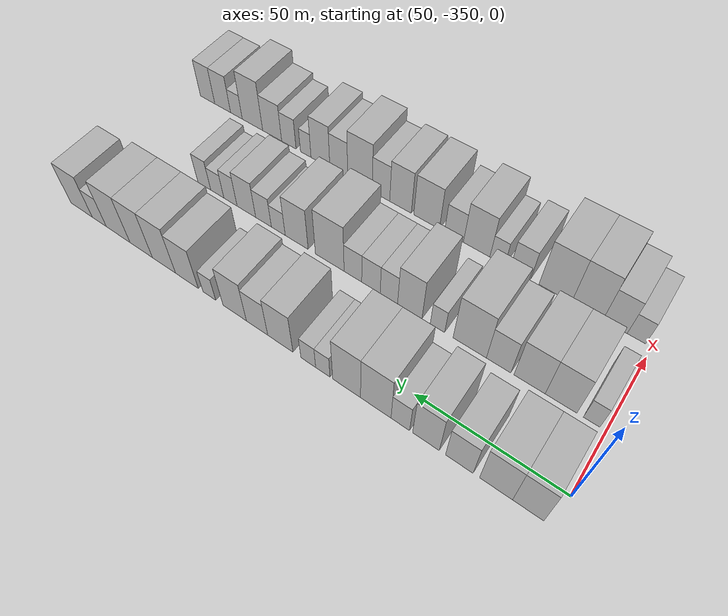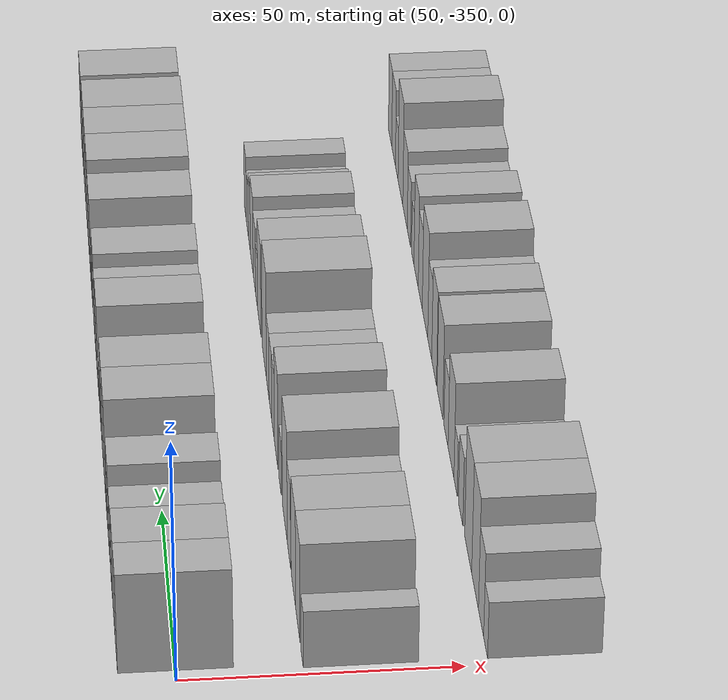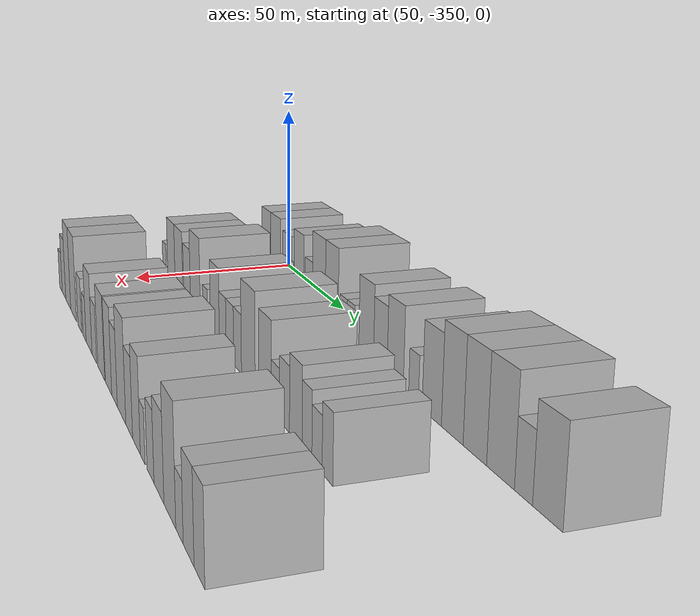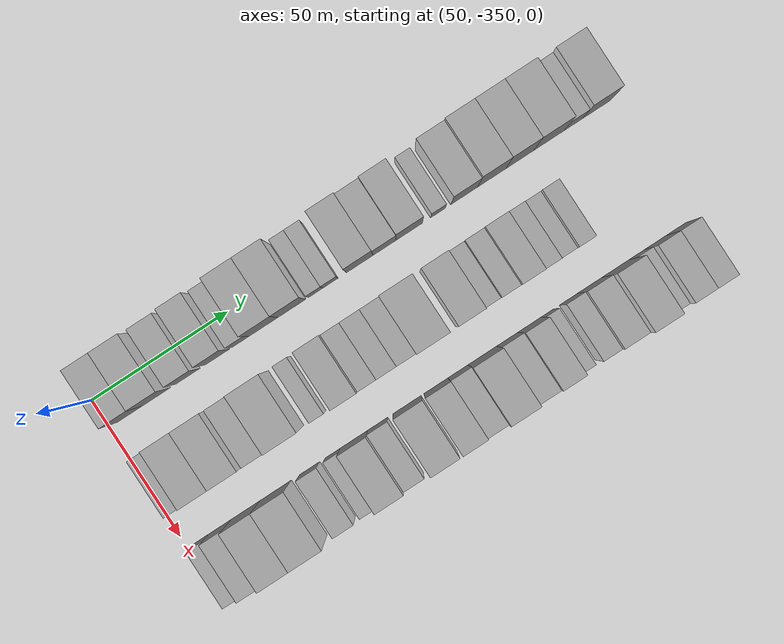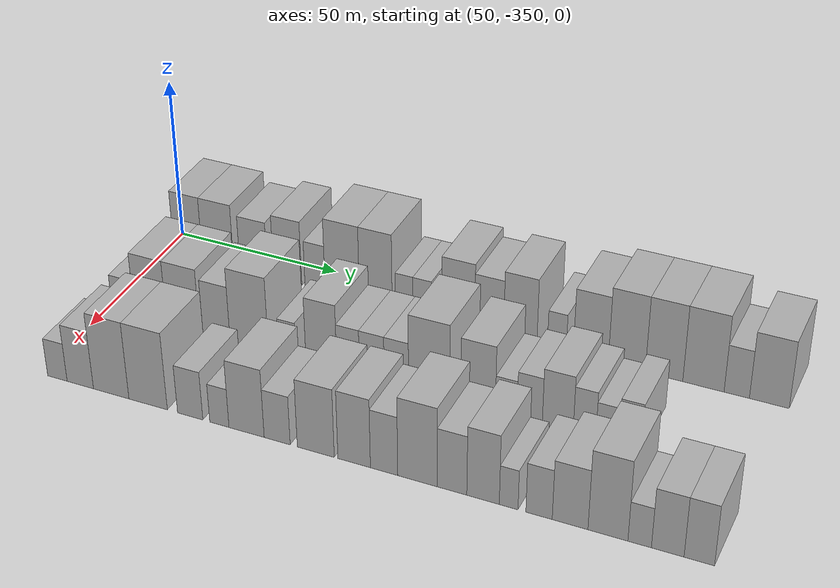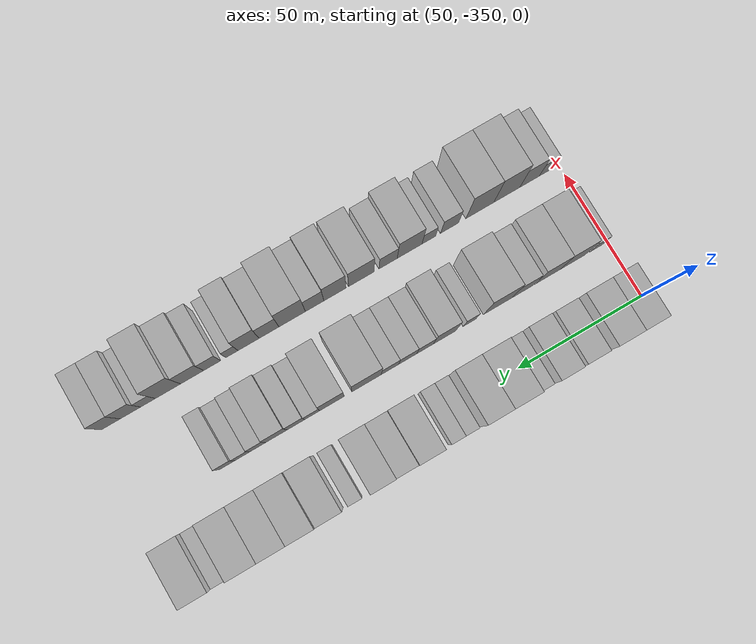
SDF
<sdf version="1.6">
 <world name="default">
  <model name="building_1">
   <static>1</static>
   <pose>50.0000 -342.3423 0 0.000000 0.000000 0.000000</pose>
   <link name="link">
    <pose>0 0 10.50 0 0 0</pose>
    <collision name="collision"><geometry><box><size>20.0000 9.3154 21.0000</size></box></geometry></collision>
    <visual name="visual">
     <cast_shadows>0</cast_shadows>
     <geometry><box><size>20.0000 9.3154 21.0000</size></box></geometry>
     <material>
      <script>
       <uri>model://HANNAS_wall/materials/scripts</uri>
       <uri>model://HANNAS_wall/materials/textures</uri>
       <name>vrc/HANNAS_wall</name>
      </script>
     </material>
    </visual>
   </link>
  </model>
  <model name="building_2">
   <static>1</static>
   <pose>50.0000 -332.5979 0 0.000000 0.000000 0.000000</pose>
   <link name="link">
    <pose>0 0 10.50 0 0 0</pose>
    <collision name="collision"><geometry><box><size>20.0000 10.1734 21.0000</size></box></geometry></collision>
    <visual name="visual">
     <cast_shadows>0</cast_shadows>
     <geometry><box><size>20.0000 10.1734 21.0000</size></box></geometry>
     <material>
      <script>
       <uri>model://HANNAS_wall/materials/scripts</uri>
       <uri>model://HANNAS_wall/materials/textures</uri>
       <name>vrc/HANNAS_wall</name>
      </script>
     </material>
    </visual>
   </link>
  </model>
  <model name="building_3">
   <static>1</static>
   <pose>50.0000 -321.1037 0 0.000000 0.000000 0.000000</pose>
   <link name="link">
    <pose>0 0 9.00 0 0 0</pose>
    <collision name="collision"><geometry><box><size>20.0000 8.8150 18.0000</size></box></geometry></collision>
    <visual name="visual">
     <cast_shadows>0</cast_shadows>
     <geometry><box><size>20.0000 8.8150 18.0000</size></box></geometry>
     <material>
      <script>
       <uri>model://HANNAS_wall/materials/scripts</uri>
       <uri>model://HANNAS_wall/materials/textures</uri>
       <name>vrc/HANNAS_wall</name>
      </script>
     </material>
    </visual>
   </link>
  </model>
  <model name="building_4">
   <static>1</static>
   <pose>50.0000 -310.2756 0 0.000000 0.000000 0.000000</pose>
   <link name="link">
    <pose>0 0 10.50 0 0 0</pose>
    <collision name="collision"><geometry><box><size>20.0000 8.8411 21.0000</size></box></geometry></collision>
    <visual name="visual">
     <cast_shadows>0</cast_shadows>
     <geometry><box><size>20.0000 8.8411 21.0000</size></box></geometry>
     <material>
      <script>
       <uri>model://HANNAS_wall/materials/scripts</uri>
       <uri>model://HANNAS_wall/materials/textures</uri>
       <name>vrc/HANNAS_wall</name>
      </script>
     </material>
    </visual>
   </link>
  </model>
  <model name="building_5">
   <static>1</static>
   <pose>50.0000 -301.7045 0 0.000000 0.000000 0.000000</pose>
   <link name="link">
    <pose>0 0 7.50 0 0 0</pose>
    <collision name="collision"><geometry><box><size>20.0000 6.3011 15.0000</size></box></geometry></collision>
    <visual name="visual">
     <cast_shadows>0</cast_shadows>
     <geometry><box><size>20.0000 6.3011 15.0000</size></box></geometry>
     <material>
      <script>
       <uri>model://HANNAS_wall/materials/scripts</uri>
       <uri>model://HANNAS_wall/materials/textures</uri>
       <name>vrc/HANNAS_wall</name>
      </script>
     </material>
    </visual>
   </link>
  </model>
  <model name="building_6">
   <static>1</static>
   <pose>50.0000 -293.2562 0 0.000000 0.000000 0.000000</pose>
   <link name="link">
    <pose>0 0 12.00 0 0 0</pose>
    <collision name="collision"><geometry><box><size>20.0000 10.5956 24.0000</size></box></geometry></collision>
    <visual name="visual">
     <cast_shadows>0</cast_shadows>
     <geometry><box><size>20.0000 10.5956 24.0000</size></box></geometry>
     <material>
      <script>
       <uri>model://HANNAS_wall/materials/scripts</uri>
       <uri>model://HANNAS_wall/materials/textures</uri>
       <name>vrc/HANNAS_wall</name>
      </script>
     </material>
    </visual>
   </link>
  </model>
  <model name="building_7">
   <static>1</static>
   <pose>50.0000 -282.9576 0 0.000000 0.000000 0.000000</pose>
   <link name="link">
    <pose>0 0 12.00 0 0 0</pose>
    <collision name="collision"><geometry><box><size>20.0000 10.0018 24.0000</size></box></geometry></collision>
    <visual name="visual">
     <cast_shadows>0</cast_shadows>
     <geometry><box><size>20.0000 10.0018 24.0000</size></box></geometry>
     <material>
      <script>
       <uri>model://HANNAS_wall/materials/scripts</uri>
       <uri>model://HANNAS_wall/materials/textures</uri>
       <name>vrc/HANNAS_wall</name>
      </script>
     </material>
    </visual>
   </link>
  </model>
  <model name="building_8">
   <static>1</static>
   <pose>50.0000 -274.3203 0 0.000000 0.000000 0.000000</pose>
   <link name="link">
    <pose>0 0 6.00 0 0 0</pose>
    <collision name="collision"><geometry><box><size>20.0000 5.2728 12.0000</size></box></geometry></collision>
    <visual name="visual">
     <cast_shadows>0</cast_shadows>
     <geometry><box><size>20.0000 5.2728 12.0000</size></box></geometry>
     <material>
      <script>
       <uri>model://HANNAS_wall/materials/scripts</uri>
       <uri>model://HANNAS_wall/materials/textures</uri>
       <name>vrc/HANNAS_wall</name>
      </script>
     </material>
    </visual>
   </link>
  </model>
  <model name="building_9">
   <static>1</static>
   <pose>50.0000 -268.9081 0 0.000000 0.000000 0.000000</pose>
   <link name="link">
    <pose>0 0 6.00 0 0 0</pose>
    <collision name="collision"><geometry><box><size>20.0000 5.5516 12.0000</size></box></geometry></collision>
    <visual name="visual">
     <cast_shadows>0</cast_shadows>
     <geometry><box><size>20.0000 5.5516 12.0000</size></box></geometry>
     <material>
      <script>
       <uri>model://HANNAS_wall/materials/scripts</uri>
       <uri>model://HANNAS_wall/materials/textures</uri>
       <name>vrc/HANNAS_wall</name>
      </script>
     </material>
    </visual>
   </link>
  </model>
  <model name="building_10">
   <static>1</static>
   <pose>50.0000 -258.2499 0 0.000000 0.000000 0.000000</pose>
   <link name="link">
    <pose>0 0 10.50 0 0 0</pose>
    <collision name="collision"><geometry><box><size>20.0000 9.7648 21.0000</size></box></geometry></collision>
    <visual name="visual">
     <cast_shadows>0</cast_shadows>
     <geometry><box><size>20.0000 9.7648 21.0000</size></box></geometry>
     <material>
      <script>
       <uri>model://HANNAS_wall/materials/scripts</uri>
       <uri>model://HANNAS_wall/materials/textures</uri>
       <name>vrc/HANNAS_wall</name>
      </script>
     </material>
    </visual>
   </link>
  </model>
  <model name="building_11">
   <static>1</static>
   <pose>50.0000 -249.1407 0 0.000000 0.000000 0.000000</pose>
   <link name="link">
    <pose>0 0 9.00 0 0 0</pose>
    <collision name="collision"><geometry><box><size>20.0000 8.4536 18.0000</size></box></geometry></collision>
    <visual name="visual">
     <cast_shadows>0</cast_shadows>
     <geometry><box><size>20.0000 8.4536 18.0000</size></box></geometry>
     <material>
      <script>
       <uri>model://HANNAS_wall/materials/scripts</uri>
       <uri>model://HANNAS_wall/materials/textures</uri>
       <name>vrc/HANNAS_wall</name>
      </script>
     </material>
    </visual>
   </link>
  </model>
  <model name="building_12">
   <static>1</static>
   <pose>50.0000 -240.1204 0 0.000000 0.000000 0.000000</pose>
   <link name="link">
    <pose>0 0 10.50 0 0 0</pose>
    <collision name="collision"><geometry><box><size>20.0000 9.5869 21.0000</size></box></geometry></collision>
    <visual name="visual">
     <cast_shadows>0</cast_shadows>
     <geometry><box><size>20.0000 9.5869 21.0000</size></box></geometry>
     <material>
      <script>
       <uri>model://HANNAS_wall/materials/scripts</uri>
       <uri>model://HANNAS_wall/materials/textures</uri>
       <name>vrc/HANNAS_wall</name>
      </script>
     </material>
    </visual>
   </link>
  </model>
  <model name="building_13">
   <static>1</static>
   <pose>50.0000 -229.6478 0 0.000000 0.000000 0.000000</pose>
   <link name="link">
    <pose>0 0 6.00 0 0 0</pose>
    <collision name="collision"><geometry><box><size>20.0000 5.3583 12.0000</size></box></geometry></collision>
    <visual name="visual">
     <cast_shadows>0</cast_shadows>
     <geometry><box><size>20.0000 5.3583 12.0000</size></box></geometry>
     <material>
      <script>
       <uri>model://HANNAS_wall/materials/scripts</uri>
       <uri>model://HANNAS_wall/materials/textures</uri>
       <name>vrc/HANNAS_wall</name>
      </script>
     </material>
    </visual>
   </link>
  </model>
  <model name="building_14">
   <static>1</static>
   <pose>50.0000 -220.0654 0 0.000000 0.000000 0.000000</pose>
   <link name="link">
    <pose>0 0 10.50 0 0 0</pose>
    <collision name="collision"><geometry><box><size>20.0000 9.8064 21.0000</size></box></geometry></collision>
    <visual name="visual">
     <cast_shadows>0</cast_shadows>
     <geometry><box><size>20.0000 9.8064 21.0000</size></box></geometry>
     <material>
      <script>
       <uri>model://HANNAS_wall/materials/scripts</uri>
       <uri>model://HANNAS_wall/materials/textures</uri>
       <name>vrc/HANNAS_wall</name>
      </script>
     </material>
    </visual>
   </link>
  </model>
  <model name="building_15">
   <static>1</static>
   <pose>50.0000 -210.0278 0 0.000000 0.000000 0.000000</pose>
   <link name="link">
    <pose>0 0 12.00 0 0 0</pose>
    <collision name="collision"><geometry><box><size>20.0000 10.2688 24.0000</size></box></geometry></collision>
    <visual name="visual">
     <cast_shadows>0</cast_shadows>
     <geometry><box><size>20.0000 10.2688 24.0000</size></box></geometry>
     <material>
      <script>
       <uri>model://HANNAS_wall/materials/scripts</uri>
       <uri>model://HANNAS_wall/materials/textures</uri>
       <name>vrc/HANNAS_wall</name>
      </script>
     </material>
    </visual>
   </link>
  </model>
  <model name="building_16">
   <static>1</static>
   <pose>50.0000 -199.7752 0 0.000000 0.000000 0.000000</pose>
   <link name="link">
    <pose>0 0 12.00 0 0 0</pose>
    <collision name="collision"><geometry><box><size>20.0000 10.2365 24.0000</size></box></geometry></collision>
    <visual name="visual">
     <cast_shadows>0</cast_shadows>
     <geometry><box><size>20.0000 10.2365 24.0000</size></box></geometry>
     <material>
      <script>
       <uri>model://HANNAS_wall/materials/scripts</uri>
       <uri>model://HANNAS_wall/materials/textures</uri>
       <name>vrc/HANNAS_wall</name>
      </script>
     </material>
    </visual>
   </link>
  </model>
  <model name="building_17">
   <static>1</static>
   <pose>50.0000 -189.1003 0 0.000000 0.000000 0.000000</pose>
   <link name="link">
    <pose>0 0 12.00 0 0 0</pose>
    <collision name="collision"><geometry><box><size>20.0000 11.1133 24.0000</size></box></geometry></collision>
    <visual name="visual">
     <cast_shadows>0</cast_shadows>
     <geometry><box><size>20.0000 11.1133 24.0000</size></box></geometry>
     <material>
      <script>
       <uri>model://HANNAS_wall/materials/scripts</uri>
       <uri>model://HANNAS_wall/materials/textures</uri>
       <name>vrc/HANNAS_wall</name>
      </script>
     </material>
    </visual>
   </link>
  </model>
  <model name="building_18">
   <static>1</static>
   <pose>50.0000 -180.1797 0 0.000000 0.000000 0.000000</pose>
   <link name="link">
    <pose>0 0 7.50 0 0 0</pose>
    <collision name="collision"><geometry><box><size>20.0000 6.7280 15.0000</size></box></geometry></collision>
    <visual name="visual">
     <cast_shadows>0</cast_shadows>
     <geometry><box><size>20.0000 6.7280 15.0000</size></box></geometry>
     <material>
      <script>
       <uri>model://HANNAS_wall/materials/scripts</uri>
       <uri>model://HANNAS_wall/materials/textures</uri>
       <name>vrc/HANNAS_wall</name>
      </script>
     </material>
    </visual>
   </link>
  </model>
  <model name="building_19">
   <static>1</static>
   <pose>50.0000 -171.5778 0 0.000000 0.000000 0.000000</pose>
   <link name="link">
    <pose>0 0 10.50 0 0 0</pose>
    <collision name="collision"><geometry><box><size>20.0000 10.4758 21.0000</size></box></geometry></collision>
    <visual name="visual">
     <cast_shadows>0</cast_shadows>
     <geometry><box><size>20.0000 10.4758 21.0000</size></box></geometry>
     <material>
      <script>
       <uri>model://HANNAS_wall/materials/scripts</uri>
       <uri>model://HANNAS_wall/materials/textures</uri>
       <name>vrc/HANNAS_wall</name>
      </script>
     </material>
    </visual>
   </link>
  </model>
  <model name="building_75">
   <static>1</static>
   <pose>82.0000 -345.4332 0 0.000000 0.000000 0.000000</pose>
   <link name="link">
    <pose>0 0 6.00 0 0 0</pose>
    <collision name="collision"><geometry><box><size>20.0000 5.1335 12.0000</size></box></geometry></collision>
    <visual name="visual">
     <cast_shadows>0</cast_shadows>
     <geometry><box><size>20.0000 5.1335 12.0000</size></box></geometry>
     <material>
      <script>
       <uri>model://HANNAS_wall/materials/scripts</uri>
       <uri>model://HANNAS_wall/materials/textures</uri>
       <name>vrc/HANNAS_wall</name>
      </script>
     </material>
    </visual>
   </link>
  </model>
  <model name="building_76">
   <static>1</static>
   <pose>82.0000 -335.8076 0 0.000000 0.000000 0.000000</pose>
   <link name="link">
    <pose>0 0 10.50 0 0 0</pose>
    <collision name="collision"><geometry><box><size>20.0000 10.1177 21.0000</size></box></geometry></collision>
    <visual name="visual">
     <cast_shadows>0</cast_shadows>
     <geometry><box><size>20.0000 10.1177 21.0000</size></box></geometry>
     <material>
      <script>
       <uri>model://HANNAS_wall/materials/scripts</uri>
       <uri>model://HANNAS_wall/materials/textures</uri>
       <name>vrc/HANNAS_wall</name>
      </script>
     </material>
    </visual>
   </link>
  </model>
  <model name="building_77">
   <static>1</static>
   <pose>82.0000 -325.6256 0 0.000000 0.000000 0.000000</pose>
   <link name="link">
    <pose>0 0 10.50 0 0 0</pose>
    <collision name="collision"><geometry><box><size>20.0000 10.2464 21.0000</size></box></geometry></collision>
    <visual name="visual">
     <cast_shadows>0</cast_shadows>
     <geometry><box><size>20.0000 10.2464 21.0000</size></box></geometry>
     <material>
      <script>
       <uri>model://HANNAS_wall/materials/scripts</uri>
       <uri>model://HANNAS_wall/materials/textures</uri>
       <name>vrc/HANNAS_wall</name>
      </script>
     </material>
    </visual>
   </link>
  </model>
  <model name="building_78">
   <static>1</static>
   <pose>82.0000 -315.3557 0 0.000000 0.000000 0.000000</pose>
   <link name="link">
    <pose>0 0 9.00 0 0 0</pose>
    <collision name="collision"><geometry><box><size>20.0000 8.2935 18.0000</size></box></geometry></collision>
    <visual name="visual">
     <cast_shadows>0</cast_shadows>
     <geometry><box><size>20.0000 8.2935 18.0000</size></box></geometry>
     <material>
      <script>
       <uri>model://HANNAS_wall/materials/scripts</uri>
       <uri>model://HANNAS_wall/materials/textures</uri>
       <name>vrc/HANNAS_wall</name>
      </script>
     </material>
    </visual>
   </link>
  </model>
  <model name="building_79">
   <static>1</static>
   <pose>82.0000 -305.4028 0 0.000000 0.000000 0.000000</pose>
   <link name="link">
    <pose>0 0 12.00 0 0 0</pose>
    <collision name="collision"><geometry><box><size>20.0000 11.6123 24.0000</size></box></geometry></collision>
    <visual name="visual">
     <cast_shadows>0</cast_shadows>
     <geometry><box><size>20.0000 11.6123 24.0000</size></box></geometry>
     <material>
      <script>
       <uri>model://HANNAS_wall/materials/scripts</uri>
       <uri>model://HANNAS_wall/materials/textures</uri>
       <name>vrc/HANNAS_wall</name>
      </script>
     </material>
    </visual>
   </link>
  </model>
  <model name="building_80">
   <static>1</static>
   <pose>82.0000 -294.0077 0 0.000000 0.000000 0.000000</pose>
   <link name="link">
    <pose>0 0 6.00 0 0 0</pose>
    <collision name="collision"><geometry><box><size>20.0000 5.1777 12.0000</size></box></geometry></collision>
    <visual name="visual">
     <cast_shadows>0</cast_shadows>
     <geometry><box><size>20.0000 5.1777 12.0000</size></box></geometry>
     <material>
      <script>
       <uri>model://HANNAS_wall/materials/scripts</uri>
       <uri>model://HANNAS_wall/materials/textures</uri>
       <name>vrc/HANNAS_wall</name>
      </script>
     </material>
    </visual>
   </link>
  </model>
  <model name="building_81">
   <static>1</static>
   <pose>82.0000 -283.8855 0 0.000000 0.000000 0.000000</pose>
   <link name="link">
    <pose>0 0 10.50 0 0 0</pose>
    <collision name="collision"><geometry><box><size>20.0000 9.0667 21.0000</size></box></geometry></collision>
    <visual name="visual">
     <cast_shadows>0</cast_shadows>
     <geometry><box><size>20.0000 9.0667 21.0000</size></box></geometry>
     <material>
      <script>
       <uri>model://HANNAS_wall/materials/scripts</uri>
       <uri>model://HANNAS_wall/materials/textures</uri>
       <name>vrc/HANNAS_wall</name>
      </script>
     </material>
    </visual>
   </link>
  </model>
  <model name="building_82">
   <static>1</static>
   <pose>82.0000 -276.0602 0 0.000000 0.000000 0.000000</pose>
   <link name="link">
    <pose>0 0 7.50 0 0 0</pose>
    <collision name="collision"><geometry><box><size>20.0000 6.5839 15.0000</size></box></geometry></collision>
    <visual name="visual">
     <cast_shadows>0</cast_shadows>
     <geometry><box><size>20.0000 6.5839 15.0000</size></box></geometry>
     <material>
      <script>
       <uri>model://HANNAS_wall/materials/scripts</uri>
       <uri>model://HANNAS_wall/materials/textures</uri>
       <name>vrc/HANNAS_wall</name>
      </script>
     </material>
    </visual>
   </link>
  </model>
  <model name="building_83">
   <static>1</static>
   <pose>82.0000 -269.2051 0 0.000000 0.000000 0.000000</pose>
   <link name="link">
    <pose>0 0 7.50 0 0 0</pose>
    <collision name="collision"><geometry><box><size>20.0000 7.1263 15.0000</size></box></geometry></collision>
    <visual name="visual">
     <cast_shadows>0</cast_shadows>
     <geometry><box><size>20.0000 7.1263 15.0000</size></box></geometry>
     <material>
      <script>
       <uri>model://HANNAS_wall/materials/scripts</uri>
       <uri>model://HANNAS_wall/materials/textures</uri>
       <name>vrc/HANNAS_wall</name>
      </script>
     </material>
    </visual>
   </link>
  </model>
  <model name="building_84">
   <static>1</static>
   <pose>82.0000 -262.1784 0 0.000000 0.000000 0.000000</pose>
   <link name="link">
    <pose>0 0 7.50 0 0 0</pose>
    <collision name="collision"><geometry><box><size>20.0000 6.9270 15.0000</size></box></geometry></collision>
    <visual name="visual">
     <cast_shadows>0</cast_shadows>
     <geometry><box><size>20.0000 6.9270 15.0000</size></box></geometry>
     <material>
      <script>
       <uri>model://HANNAS_wall/materials/scripts</uri>
       <uri>model://HANNAS_wall/materials/textures</uri>
       <name>vrc/HANNAS_wall</name>
      </script>
     </material>
    </visual>
   </link>
  </model>
  <model name="building_85">
   <static>1</static>
   <pose>82.0000 -252.9175 0 0.000000 0.000000 0.000000</pose>
   <link name="link">
    <pose>0 0 12.00 0 0 0</pose>
    <collision name="collision"><geometry><box><size>20.0000 11.5948 24.0000</size></box></geometry></collision>
    <visual name="visual">
     <cast_shadows>0</cast_shadows>
     <geometry><box><size>20.0000 11.5948 24.0000</size></box></geometry>
     <material>
      <script>
       <uri>model://HANNAS_wall/materials/scripts</uri>
       <uri>model://HANNAS_wall/materials/textures</uri>
       <name>vrc/HANNAS_wall</name>
      </script>
     </material>
    </visual>
   </link>
  </model>
  <model name="building_86">
   <static>1</static>
   <pose>82.0000 -239.3243 0 0.000000 0.000000 0.000000</pose>
   <link name="link">
    <pose>0 0 10.50 0 0 0</pose>
    <collision name="collision"><geometry><box><size>20.0000 9.5917 21.0000</size></box></geometry></collision>
    <visual name="visual">
     <cast_shadows>0</cast_shadows>
     <geometry><box><size>20.0000 9.5917 21.0000</size></box></geometry>
     <material>
      <script>
       <uri>model://HANNAS_wall/materials/scripts</uri>
       <uri>model://HANNAS_wall/materials/textures</uri>
       <name>vrc/HANNAS_wall</name>
      </script>
     </material>
    </visual>
   </link>
  </model>
  <model name="building_87">
   <static>1</static>
   <pose>82.0000 -231.5655 0 0.000000 0.000000 0.000000</pose>
   <link name="link">
    <pose>0 0 6.00 0 0 0</pose>
    <collision name="collision"><geometry><box><size>20.0000 5.9258 12.0000</size></box></geometry></collision>
    <visual name="visual">
     <cast_shadows>0</cast_shadows>
     <geometry><box><size>20.0000 5.9258 12.0000</size></box></geometry>
     <material>
      <script>
       <uri>model://HANNAS_wall/materials/scripts</uri>
       <uri>model://HANNAS_wall/materials/textures</uri>
       <name>vrc/HANNAS_wall</name>
      </script>
     </material>
    </visual>
   </link>
  </model>
  <model name="building_88">
   <static>1</static>
   <pose>82.0000 -225.1864 0 0.000000 0.000000 0.000000</pose>
   <link name="link">
    <pose>0 0 7.50 0 0 0</pose>
    <collision name="collision"><geometry><box><size>20.0000 6.8324 15.0000</size></box></geometry></collision>
    <visual name="visual">
     <cast_shadows>0</cast_shadows>
     <geometry><box><size>20.0000 6.8324 15.0000</size></box></geometry>
     <material>
      <script>
       <uri>model://HANNAS_wall/materials/scripts</uri>
       <uri>model://HANNAS_wall/materials/textures</uri>
       <name>vrc/HANNAS_wall</name>
      </script>
     </material>
    </visual>
   </link>
  </model>
  <model name="building_89">
   <static>1</static>
   <pose>82.0000 -217.6372 0 0.000000 0.000000 0.000000</pose>
   <link name="link">
    <pose>0 0 9.00 0 0 0</pose>
    <collision name="collision"><geometry><box><size>20.0000 8.2659 18.0000</size></box></geometry></collision>
    <visual name="visual">
     <cast_shadows>0</cast_shadows>
     <geometry><box><size>20.0000 8.2659 18.0000</size></box></geometry>
     <material>
      <script>
       <uri>model://HANNAS_wall/materials/scripts</uri>
       <uri>model://HANNAS_wall/materials/textures</uri>
       <name>vrc/HANNAS_wall</name>
      </script>
     </material>
    </visual>
   </link>
  </model>
  <model name="building_90">
   <static>1</static>
   <pose>82.0000 -210.5041 0 0.000000 0.000000 0.000000</pose>
   <link name="link">
    <pose>0 0 7.50 0 0 0</pose>
    <collision name="collision"><geometry><box><size>20.0000 6.0003 15.0000</size></box></geometry></collision>
    <visual name="visual">
     <cast_shadows>0</cast_shadows>
     <geometry><box><size>20.0000 6.0003 15.0000</size></box></geometry>
     <material>
      <script>
       <uri>model://HANNAS_wall/materials/scripts</uri>
       <uri>model://HANNAS_wall/materials/textures</uri>
       <name>vrc/HANNAS_wall</name>
      </script>
     </material>
    </visual>
   </link>
  </model>
  <model name="building_91">
   <static>1</static>
   <pose>82.0000 -204.5044 0 0.000000 0.000000 0.000000</pose>
   <link name="link">
    <pose>0 0 6.00 0 0 0</pose>
    <collision name="collision"><geometry><box><size>20.0000 5.9992 12.0000</size></box></geometry></collision>
    <visual name="visual">
     <cast_shadows>0</cast_shadows>
     <geometry><box><size>20.0000 5.9992 12.0000</size></box></geometry>
     <material>
      <script>
       <uri>model://HANNAS_wall/materials/scripts</uri>
       <uri>model://HANNAS_wall/materials/textures</uri>
       <name>vrc/HANNAS_wall</name>
      </script>
     </material>
    </visual>
   </link>
  </model>
  <model name="building_92">
   <static>1</static>
   <pose>82.0000 -198.5047 0 0.000000 0.000000 0.000000</pose>
   <link name="link">
    <pose>0 0 7.50 0 0 0</pose>
    <collision name="collision"><geometry><box><size>20.0000 6.0001 15.0000</size></box></geometry></collision>
    <visual name="visual">
     <cast_shadows>0</cast_shadows>
     <geometry><box><size>20.0000 6.0001 15.0000</size></box></geometry>
     <material>
      <script>
       <uri>model://HANNAS_wall/materials/scripts</uri>
       <uri>model://HANNAS_wall/materials/textures</uri>
       <name>vrc/HANNAS_wall</name>
      </script>
     </material>
    </visual>
   </link>
  </model>
  <model name="building_150">
   <static>1</static>
   <pose>114.0000 -345.0100 0 0.000000 0.000000 0.000000</pose>
   <link name="link">
    <pose>0 0 6.00 0 0 0</pose>
    <collision name="collision"><geometry><box><size>20.0000 5.9799 12.0000</size></box></geometry></collision>
    <visual name="visual">
     <cast_shadows>0</cast_shadows>
     <geometry><box><size>20.0000 5.9799 12.0000</size></box></geometry>
     <material>
      <script>
       <uri>model://HANNAS_wall/materials/scripts</uri>
       <uri>model://HANNAS_wall/materials/textures</uri>
       <name>vrc/HANNAS_wall</name>
      </script>
     </material>
    </visual>
   </link>
  </model>
  <model name="building_151">
   <static>1</static>
   <pose>114.0000 -338.0044 0 0.000000 0.000000 0.000000</pose>
   <link name="link">
    <pose>0 0 9.00 0 0 0</pose>
    <collision name="collision"><geometry><box><size>20.0000 8.0313 18.0000</size></box></geometry></collision>
    <visual name="visual">
     <cast_shadows>0</cast_shadows>
     <geometry><box><size>20.0000 8.0313 18.0000</size></box></geometry>
     <material>
      <script>
       <uri>model://HANNAS_wall/materials/scripts</uri>
       <uri>model://HANNAS_wall/materials/textures</uri>
       <name>vrc/HANNAS_wall</name>
      </script>
     </material>
    </visual>
   </link>
  </model>
  <model name="building_152">
   <static>1</static>
   <pose>114.0000 -328.6594 0 0.000000 0.000000 0.000000</pose>
   <link name="link">
    <pose>0 0 12.00 0 0 0</pose>
    <collision name="collision"><geometry><box><size>20.0000 10.6588 24.0000</size></box></geometry></collision>
    <visual name="visual">
     <cast_shadows>0</cast_shadows>
     <geometry><box><size>20.0000 10.6588 24.0000</size></box></geometry>
     <material>
      <script>
       <uri>model://HANNAS_wall/materials/scripts</uri>
       <uri>model://HANNAS_wall/materials/textures</uri>
       <name>vrc/HANNAS_wall</name>
      </script>
     </material>
    </visual>
   </link>
  </model>
  <model name="building_153">
   <static>1</static>
   <pose>114.0000 -317.6374 0 0.000000 0.000000 0.000000</pose>
   <link name="link">
    <pose>0 0 12.00 0 0 0</pose>
    <collision name="collision"><geometry><box><size>20.0000 11.3854 24.0000</size></box></geometry></collision>
    <visual name="visual">
     <cast_shadows>0</cast_shadows>
     <geometry><box><size>20.0000 11.3854 24.0000</size></box></geometry>
     <material>
      <script>
       <uri>model://HANNAS_wall/materials/scripts</uri>
       <uri>model://HANNAS_wall/materials/textures</uri>
       <name>vrc/HANNAS_wall</name>
      </script>
     </material>
    </visual>
   </link>
  </model>
  <model name="building_154">
   <static>1</static>
   <pose>114.0000 -305.2640 0 0.000000 0.000000 0.000000</pose>
   <link name="link">
    <pose>0 0 7.50 0 0 0</pose>
    <collision name="collision"><geometry><box><size>20.0000 7.3614 15.0000</size></box></geometry></collision>
    <visual name="visual">
     <cast_shadows>0</cast_shadows>
     <geometry><box><size>20.0000 7.3614 15.0000</size></box></geometry>
     <material>
      <script>
       <uri>model://HANNAS_wall/materials/scripts</uri>
       <uri>model://HANNAS_wall/materials/textures</uri>
       <name>vrc/HANNAS_wall</name>
      </script>
     </material>
    </visual>
   </link>
  </model>
  <model name="building_155">
   <static>1</static>
   <pose>114.0000 -296.8234 0 0.000000 0.000000 0.000000</pose>
   <link name="link">
    <pose>0 0 6.00 0 0 0</pose>
    <collision name="collision"><geometry><box><size>20.0000 5.5198 12.0000</size></box></geometry></collision>
    <visual name="visual">
     <cast_shadows>0</cast_shadows>
     <geometry><box><size>20.0000 5.5198 12.0000</size></box></geometry>
     <material>
      <script>
       <uri>model://HANNAS_wall/materials/scripts</uri>
       <uri>model://HANNAS_wall/materials/textures</uri>
       <name>vrc/HANNAS_wall</name>
      </script>
     </material>
    </visual>
   </link>
  </model>
  <model name="building_156">
   <static>1</static>
   <pose>114.0000 -289.0559 0 0.000000 0.000000 0.000000</pose>
   <link name="link">
    <pose>0 0 10.50 0 0 0</pose>
    <collision name="collision"><geometry><box><size>20.0000 10.0151 21.0000</size></box></geometry></collision>
    <visual name="visual">
     <cast_shadows>0</cast_shadows>
     <geometry><box><size>20.0000 10.0151 21.0000</size></box></geometry>
     <material>
      <script>
       <uri>model://HANNAS_wall/materials/scripts</uri>
       <uri>model://HANNAS_wall/materials/textures</uri>
       <name>vrc/HANNAS_wall</name>
      </script>
     </material>
    </visual>
   </link>
  </model>
  <model name="building_157">
   <static>1</static>
   <pose>114.0000 -280.3958 0 0.000000 0.000000 0.000000</pose>
   <link name="link">
    <pose>0 0 7.50 0 0 0</pose>
    <collision name="collision"><geometry><box><size>20.0000 7.3053 15.0000</size></box></geometry></collision>
    <visual name="visual">
     <cast_shadows>0</cast_shadows>
     <geometry><box><size>20.0000 7.3053 15.0000</size></box></geometry>
     <material>
      <script>
       <uri>model://HANNAS_wall/materials/scripts</uri>
       <uri>model://HANNAS_wall/materials/textures</uri>
       <name>vrc/HANNAS_wall</name>
      </script>
     </material>
    </visual>
   </link>
  </model>
  <model name="building_158">
   <static>1</static>
   <pose>114.0000 -269.6367 0 0.000000 0.000000 0.000000</pose>
   <link name="link">
    <pose>0 0 10.50 0 0 0</pose>
    <collision name="collision"><geometry><box><size>20.0000 10.2128 21.0000</size></box></geometry></collision>
    <visual name="visual">
     <cast_shadows>0</cast_shadows>
     <geometry><box><size>20.0000 10.2128 21.0000</size></box></geometry>
     <material>
      <script>
       <uri>model://HANNAS_wall/materials/scripts</uri>
       <uri>model://HANNAS_wall/materials/textures</uri>
       <name>vrc/HANNAS_wall</name>
      </script>
     </material>
    </visual>
   </link>
  </model>
  <model name="building_159">
   <static>1</static>
   <pose>114.0000 -259.1006 0 0.000000 0.000000 0.000000</pose>
   <link name="link">
    <pose>0 0 10.50 0 0 0</pose>
    <collision name="collision"><geometry><box><size>20.0000 8.8594 21.0000</size></box></geometry></collision>
    <visual name="visual">
     <cast_shadows>0</cast_shadows>
     <geometry><box><size>20.0000 8.8594 21.0000</size></box></geometry>
     <material>
      <script>
       <uri>model://HANNAS_wall/materials/scripts</uri>
       <uri>model://HANNAS_wall/materials/textures</uri>
       <name>vrc/HANNAS_wall</name>
      </script>
     </material>
    </visual>
   </link>
  </model>
  <model name="building_160">
   <static>1</static>
   <pose>114.0000 -250.9980 0 0.000000 0.000000 0.000000</pose>
   <link name="link">
    <pose>0 0 9.00 0 0 0</pose>
    <collision name="collision"><geometry><box><size>20.0000 7.3457 18.0000</size></box></geometry></collision>
    <visual name="visual">
     <cast_shadows>0</cast_shadows>
     <geometry><box><size>20.0000 7.3457 18.0000</size></box></geometry>
     <material>
      <script>
       <uri>model://HANNAS_wall/materials/scripts</uri>
       <uri>model://HANNAS_wall/materials/textures</uri>
       <name>vrc/HANNAS_wall</name>
      </script>
     </material>
    </visual>
   </link>
  </model>
  <model name="building_161">
   <static>1</static>
   <pose>114.0000 -242.0949 0 0.000000 0.000000 0.000000</pose>
   <link name="link">
    <pose>0 0 12.00 0 0 0</pose>
    <collision name="collision"><geometry><box><size>20.0000 10.4605 24.0000</size></box></geometry></collision>
    <visual name="visual">
     <cast_shadows>0</cast_shadows>
     <geometry><box><size>20.0000 10.4605 24.0000</size></box></geometry>
     <material>
      <script>
       <uri>model://HANNAS_wall/materials/scripts</uri>
       <uri>model://HANNAS_wall/materials/textures</uri>
       <name>vrc/HANNAS_wall</name>
      </script>
     </material>
    </visual>
   </link>
  </model>
  <model name="building_162">
   <static>1</static>
   <pose>114.0000 -232.9750 0 0.000000 0.000000 0.000000</pose>
   <link name="link">
    <pose>0 0 9.00 0 0 0</pose>
    <collision name="collision"><geometry><box><size>20.0000 7.7792 18.0000</size></box></geometry></collision>
    <visual name="visual">
     <cast_shadows>0</cast_shadows>
     <geometry><box><size>20.0000 7.7792 18.0000</size></box></geometry>
     <material>
      <script>
       <uri>model://HANNAS_wall/materials/scripts</uri>
       <uri>model://HANNAS_wall/materials/textures</uri>
       <name>vrc/HANNAS_wall</name>
      </script>
     </material>
    </visual>
   </link>
  </model>
  <model name="building_163">
   <static>1</static>
   <pose>114.0000 -224.8785 0 0.000000 0.000000 0.000000</pose>
   <link name="link">
    <pose>0 0 10.50 0 0 0</pose>
    <collision name="collision"><geometry><box><size>20.0000 8.4138 21.0000</size></box></geometry></collision>
    <visual name="visual">
     <cast_shadows>0</cast_shadows>
     <geometry><box><size>20.0000 8.4138 21.0000</size></box></geometry>
     <material>
      <script>
       <uri>model://HANNAS_wall/materials/scripts</uri>
       <uri>model://HANNAS_wall/materials/textures</uri>
       <name>vrc/HANNAS_wall</name>
      </script>
     </material>
    </visual>
   </link>
  </model>
  <model name="building_164">
   <static>1</static>
   <pose>114.0000 -218.2696 0 0.000000 0.000000 0.000000</pose>
   <link name="link">
    <pose>0 0 6.00 0 0 0</pose>
    <collision name="collision"><geometry><box><size>20.0000 4.8040 12.0000</size></box></geometry></collision>
    <visual name="visual">
     <cast_shadows>0</cast_shadows>
     <geometry><box><size>20.0000 4.8040 12.0000</size></box></geometry>
     <material>
      <script>
       <uri>model://HANNAS_wall/materials/scripts</uri>
       <uri>model://HANNAS_wall/materials/textures</uri>
       <name>vrc/HANNAS_wall</name>
      </script>
     </material>
    </visual>
   </link>
  </model>
  <model name="building_165">
   <static>1</static>
   <pose>114.0000 -210.5321 0 0.000000 0.000000 0.000000</pose>
   <link name="link">
    <pose>0 0 7.50 0 0 0</pose>
    <collision name="collision"><geometry><box><size>20.0000 6.6710 15.0000</size></box></geometry></collision>
    <visual name="visual">
     <cast_shadows>0</cast_shadows>
     <geometry><box><size>20.0000 6.6710 15.0000</size></box></geometry>
     <material>
      <script>
       <uri>model://HANNAS_wall/materials/scripts</uri>
       <uri>model://HANNAS_wall/materials/textures</uri>
       <name>vrc/HANNAS_wall</name>
      </script>
     </material>
    </visual>
   </link>
  </model>
  <model name="building_166">
   <static>1</static>
   <pose>114.0000 -202.7201 0 0.000000 0.000000 0.000000</pose>
   <link name="link">
    <pose>0 0 9.00 0 0 0</pose>
    <collision name="collision"><geometry><box><size>20.0000 8.9531 18.0000</size></box></geometry></collision>
    <visual name="visual">
     <cast_shadows>0</cast_shadows>
     <geometry><box><size>20.0000 8.9531 18.0000</size></box></geometry>
     <material>
      <script>
       <uri>model://HANNAS_wall/materials/scripts</uri>
       <uri>model://HANNAS_wall/materials/textures</uri>
       <name>vrc/HANNAS_wall</name>
      </script>
     </material>
    </visual>
   </link>
  </model>
  <model name="building_167">
   <static>1</static>
   <pose>114.0000 -193.3153 0 0.000000 0.000000 0.000000</pose>
   <link name="link">
    <pose>0 0 12.00 0 0 0</pose>
    <collision name="collision"><geometry><box><size>20.0000 9.8565 24.0000</size></box></geometry></collision>
    <visual name="visual">
     <cast_shadows>0</cast_shadows>
     <geometry><box><size>20.0000 9.8565 24.0000</size></box></geometry>
     <material>
      <script>
       <uri>model://HANNAS_wall/materials/scripts</uri>
       <uri>model://HANNAS_wall/materials/textures</uri>
       <name>vrc/HANNAS_wall</name>
      </script>
     </material>
    </visual>
   </link>
  </model>
  <model name="building_168">
   <static>1</static>
   <pose>114.0000 -185.5214 0 0.000000 0.000000 0.000000</pose>
   <link name="link">
    <pose>0 0 6.00 0 0 0</pose>
    <collision name="collision"><geometry><box><size>20.0000 5.7313 12.0000</size></box></geometry></collision>
    <visual name="visual">
     <cast_shadows>0</cast_shadows>
     <geometry><box><size>20.0000 5.7313 12.0000</size></box></geometry>
     <material>
      <script>
       <uri>model://HANNAS_wall/materials/scripts</uri>
       <uri>model://HANNAS_wall/materials/textures</uri>
       <name>vrc/HANNAS_wall</name>
      </script>
     </material>
    </visual>
   </link>
  </model>
  <model name="building_169">
   <static>1</static>
   <pose>114.0000 -178.7162 0 0.000000 0.000000 0.000000</pose>
   <link name="link">
    <pose>0 0 9.00 0 0 0</pose>
    <collision name="collision"><geometry><box><size>20.0000 7.8791 18.0000</size></box></geometry></collision>
    <visual name="visual">
     <cast_shadows>0</cast_shadows>
     <geometry><box><size>20.0000 7.8791 18.0000</size></box></geometry>
     <material>
      <script>
       <uri>model://HANNAS_wall/materials/scripts</uri>
       <uri>model://HANNAS_wall/materials/textures</uri>
       <name>vrc/HANNAS_wall</name>
      </script>
     </material>
    </visual>
   </link>
  </model>
  <model name="building_170">
   <static>1</static>
   <pose>114.0000 -171.1345 0 0.000000 0.000000 0.000000</pose>
   <link name="link">
    <pose>0 0 9.00 0 0 0</pose>
    <collision name="collision"><geometry><box><size>20.0000 7.2842 18.0000</size></box></geometry></collision>
    <visual name="visual">
     <cast_shadows>0</cast_shadows>
     <geometry><box><size>20.0000 7.2842 18.0000</size></box></geometry>
     <material>
      <script>
       <uri>model://HANNAS_wall/materials/scripts</uri>
       <uri>model://HANNAS_wall/materials/textures</uri>
       <name>vrc/HANNAS_wall</name>
      </script>
     </material>
    </visual>
   </link>
  </model>
 </world>
</sdf>
